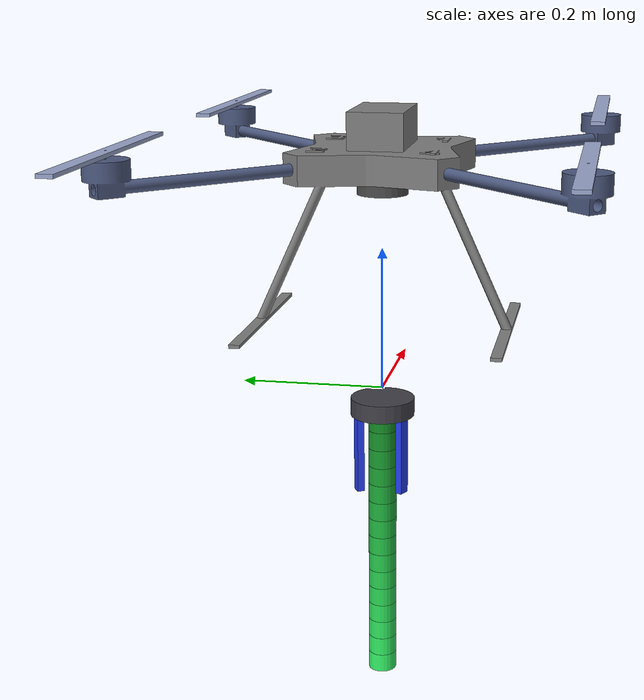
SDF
<?xml version="1.0" encoding="UTF-8"?>
<sdf version='1.9'>
  <model name='hillstar_continuum_arm_gripper'>
    <include merge='true'>
      <uri>model://hillstar</uri>
    </include>

    <include merge='true'>
      <uri>model://continuum_arm_rbsn</uri>
      <pose relative_to='base_link'>0 0 -0.015 0 0 0</pose>
    </include>

    <joint name="continuum_arm_mount_joint" type="fixed">
      <parent>base_link</parent>
      <child>continuum_arm_rbsn/base_cyl</child>
      <sensor name="arm_base_ft_sensor" type="force_torque">
        <update_rate>100</update_rate>
        <force_torque>
          <frame>parent</frame>
          <measure_direction>child_to_parent</measure_direction>
        </force_torque>
      </sensor>
    </joint>

    <include merge='true'>
      <uri>model://gripper_3finger</uri>
      <pose relative_to='continuum_arm_rbsn/segment_15'>0 0 -0.01333 0 0 0</pose>
    </include>

    <!-- Glue joint: welds the palm base onto the arm's tip segment, same as
         each finger below. Fixed - it's a static connector between the arm
         and the finger set, not an actuated part. -->
    <joint name="palm_joint" type="fixed">
      <parent>continuum_arm_rbsn/segment_15</parent>
      <child>gripper_3finger/palm</child>
    </joint>

    <joint name="finger_0_joint" type="revolute">
      <parent>continuum_arm_rbsn/segment_15</parent>
      <child>gripper_3finger/finger_0</child>
      <axis>
        <xyz>0 -1 0</xyz>
        <limit>
          <lower>-0.6</lower>
          <upper>0.6</upper>
          <effort>0.5</effort>
          <velocity>3.0</velocity>
        </limit>
        <dynamics>
          <damping>0.02</damping>
          <friction>0.005</friction>
        </dynamics>
      </axis>
    </joint>

    <joint name="finger_1_joint" type="revolute">
      <parent>continuum_arm_rbsn/segment_15</parent>
      <child>gripper_3finger/finger_1</child>
      <axis>
        <xyz>0 -1 0</xyz>
        <limit>
          <lower>-0.6</lower>
          <upper>0.6</upper>
          <effort>0.5</effort>
          <velocity>3.0</velocity>
        </limit>
        <dynamics>
          <damping>0.02</damping>
          <friction>0.005</friction>
        </dynamics>
      </axis>
    </joint>

    <joint name="finger_2_joint" type="revolute">
      <parent>continuum_arm_rbsn/segment_15</parent>
      <child>gripper_3finger/finger_2</child>
      <axis>
        <xyz>0 -1 0</xyz>
        <limit>
          <lower>-0.6</lower>
          <upper>0.6</upper>
          <effort>0.5</effort>
          <velocity>3.0</velocity>
        </limit>
        <dynamics>
          <damping>0.02</damping>
          <friction>0.005</friction>
        </dynamics>
      </axis>
    </joint>

    <plugin filename="GripperController" name="gripper_controller::GripperController">
      <gripper_base_link>continuum_arm_rbsn/segment_15</gripper_base_link>
      <finger_joint>finger_0_joint</finger_joint>
      <finger_joint>finger_1_joint</finger_joint>
      <finger_joint>finger_2_joint</finger_joint>
      <finger_collision>gripper_3finger/finger_0_collision</finger_collision>
      <finger_collision>gripper_3finger/finger_1_collision</finger_collision>
      <finger_collision>gripper_3finger/finger_2_collision</finger_collision>
      <finger_contact_topic>/gripper_3finger/finger_0_contact</finger_contact_topic>
      <finger_contact_topic>/gripper_3finger/finger_1_contact</finger_contact_topic>
      <finger_contact_topic>/gripper_3finger/finger_2_contact</finger_contact_topic>
      <!-- open = fingers spread outward, ready to grab; closed = fingers
           curled toward center, object grasped; 30 deg from vertical. -->
      <open_position>0.5235</open_position>
      <closed_position>-0.5235</closed_position>
      <finger_p_gain>1.5</finger_p_gain>
      <finger_d_gain>0.02</finger_d_gain>
      <finger_effort_limit>0.5</finger_effort_limit>
      <command_topic>/hillstar/gripper_cmd</command_topic>
      <state_topic>/hillstar/gripper_state</state_topic>
      <grasp_radius>0.08</grasp_radius>
      <grasp_center_offset>0 0 -0.08533</grasp_center_offset>
      <vehicle_model_name>hillstar_continuum_arm_gripper</vehicle_model_name>
    </plugin>
  </model>
</sdf>
